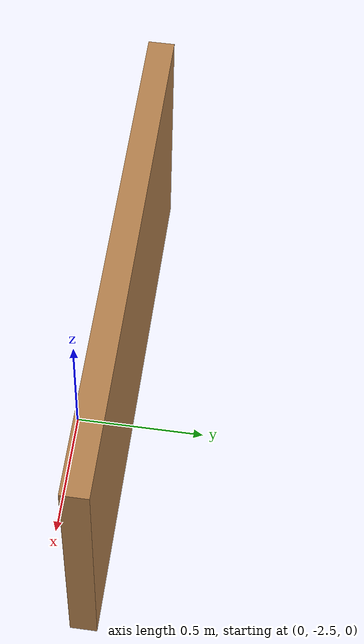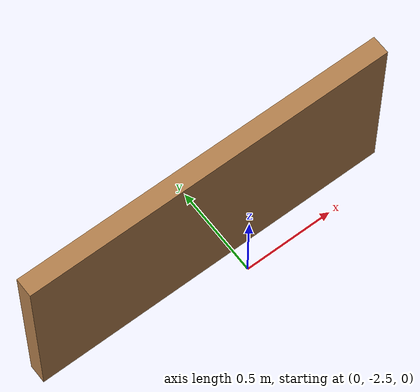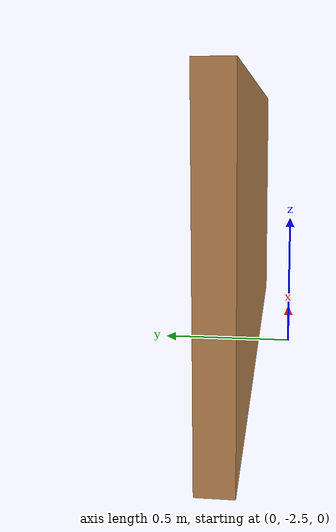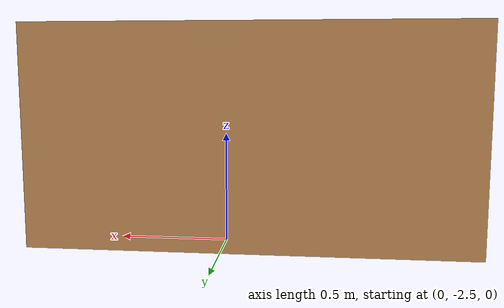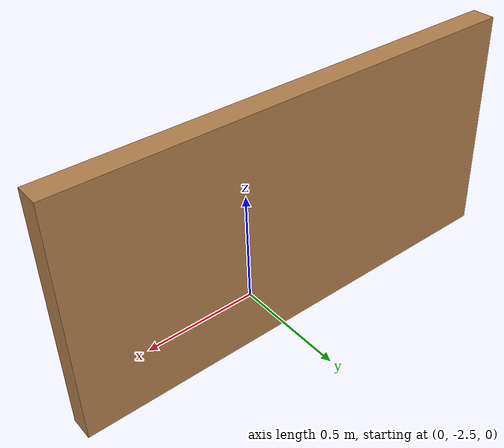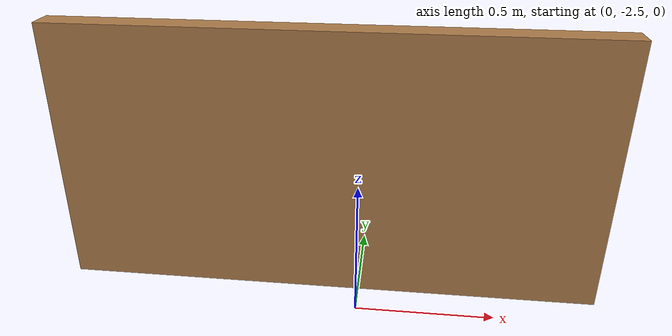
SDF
<?xml version='1.0'?>
<sdf version='1.6'>
  <model name='wall_1'>
    <pose frame=''>-0.12 -2.33 0 0 -0 0</pose>
    <link name='Wall_0'>
      <collision name='Wall_0_Collision'>
        <geometry>
          <box>
            <size>2 0.1 1</size>
          </box>
        </geometry>
        <pose frame=''>0 0 0.5 0 -0 0</pose>
      </collision>
      <visual name='Wall_0_Visual'>
        <pose frame=''>0 0 0.5 0 -0 0</pose>
        <geometry>
          <box>
            <size>2 0.1 1</size>
          </box>
        </geometry>
        <material>
          <script>
            <uri>file://media/materials/scripts/gazebo.material</uri>
            <name>Gazebo/Wood</name>
          </script>
          <ambient>1 1 1 1</ambient>
        </material>
        <meta>
          <layer>0</layer>
        </meta>
      </visual>
      <pose frame=''>0 0 0 0 -0 0</pose>
    </link>
    <static>1</static>
  </model>
</sdf>
